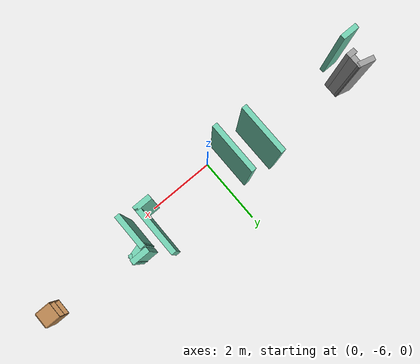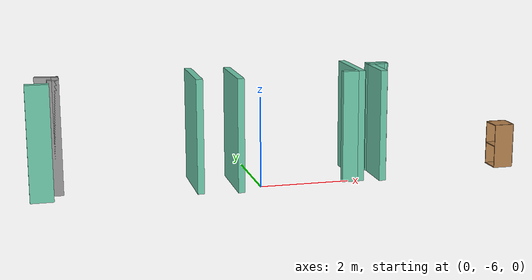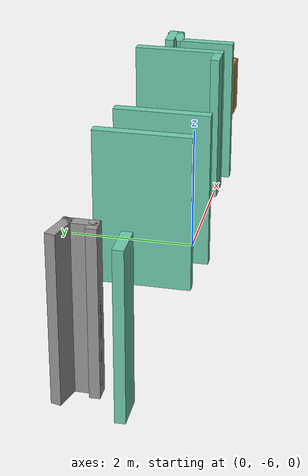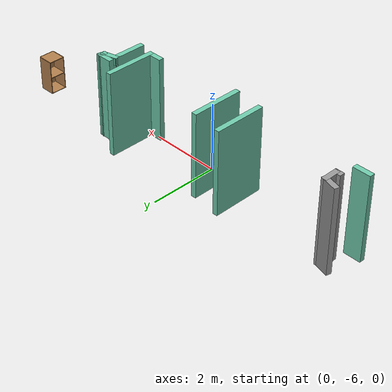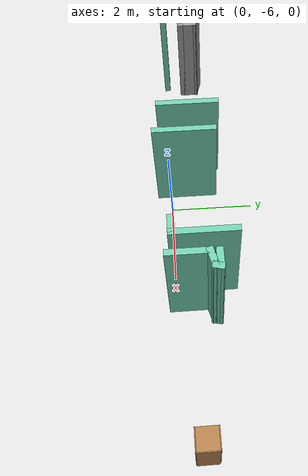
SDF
<sdf version="1.6">
 <world name="default">
  <model name="map_3">
   <pose>0.639107 -0.355311 0 0 -0 0</pose>
   <link name="Wall_145">
    <collision name="Wall_145_Collision">
     <geometry><box><size>0.5 0.15 2.5</size></box></geometry>
     <pose>0 0 1.25 0 -0 0</pose>
    </collision>
    <visual name="Wall_145_Visual">
     <pose>0 0 1.25 0 -0 0</pose>
     <geometry><box><size>0.5 0.15 2.5</size></box></geometry>
     <material>
      <script><uri>file://media/materials/scripts/gazebo.material</uri><name>Gazebo/Grey</name></script>
      <ambient>1 1 1 1</ambient>
     </material>
     <meta><layer>0</layer></meta>
    </visual>
    <pose>-5.10726 -4.78299 0 0 -0 -0.261799</pose>
   </link>
   <link name="Wall_146">
    <collision name="Wall_146_Collision">
     <geometry><box><size>0.5 0.15 2.5</size></box></geometry>
     <pose>0 0 1.25 0 -0 0</pose>
    </collision>
    <visual name="Wall_146_Visual">
     <pose>0 0 1.25 0 -0 0</pose>
     <geometry><box><size>0.5 0.15 2.5</size></box></geometry>
     <material>
      <script><uri>file://media/materials/scripts/gazebo.material</uri><name>Gazebo/Grey</name></script>
      <ambient>1 1 1 1</ambient>
     </material>
     <meta><layer>0</layer></meta>
    </visual>
    <pose>-4.93822 -5.00328 0 0 -0 -1.5708</pose>
   </link>
   <link name="Wall_147">
    <collision name="Wall_147_Collision">
     <geometry><box><size>0.25 0.15 2.5</size></box></geometry>
     <pose>0 0 1.25 0 -0 0</pose>
    </collision>
    <visual name="Wall_147_Visual">
     <pose>0 0 1.25 0 -0 0</pose>
     <geometry><box><size>0.25 0.15 2.5</size></box></geometry>
     <material>
      <script><uri>file://media/materials/scripts/gazebo.material</uri><name>Gazebo/Grey</name></script>
      <ambient>1 1 1 1</ambient>
     </material>
     <meta><layer>0</layer></meta>
    </visual>
    <pose>-4.98822 -5.17828 0 0 -0 3.14159</pose>
   </link>
   <link name="Wall_63">
    <collision name="Wall_63_Collision">
     <geometry><box><size>0.5 0.15 2.5</size></box></geometry>
     <pose>0 0 1.25 0 -0 0</pose>
    </collision>
    <visual name="Wall_63_Visual">
     <pose>0 0 1.25 0 -0 0</pose>
     <geometry><box><size>0.5 0.15 2.5</size></box></geometry>
     <material>
      <script><uri>file://media/materials/scripts/gazebo.material</uri><name>Gazebo/Grey</name></script>
      <ambient>0.435294 0.796078 0.67451 1</ambient>
     </material>
     <meta><layer>0</layer></meta>
    </visual>
    <pose>-5.33479 -5.63401 0 0 -0 0</pose>
   </link>
   <link name="Wall_66">
    <collision name="Wall_66_Collision">
     <geometry><box><size>1.5 0.15 2.5</size></box></geometry>
     <pose>0 0 1.25 0 -0 0</pose>
    </collision>
    <visual name="Wall_66_Visual">
     <pose>0 0 1.25 0 -0 0</pose>
     <geometry><box><size>1.5 0.15 2.5</size></box></geometry>
     <material>
      <script><uri>file://media/materials/scripts/gazebo.material</uri><name>Gazebo/Grey</name></script>
      <ambient>0.435294 0.796078 0.67451 1</ambient>
     </material>
     <meta><layer>0</layer></meta>
    </visual>
    <pose>-2.00669 -5.13401 0 0 -0 1.5708</pose>
   </link>
   <link name="Wall_74">
    <collision name="Wall_74_Collision">
     <geometry><box><size>1.5 0.15 2.5</size></box></geometry>
     <pose>0 0 1.25 0 -0 0</pose>
    </collision>
    <visual name="Wall_74_Visual">
     <pose>0 0 1.25 0 -0 0</pose>
     <geometry><box><size>1.5 0.15 2.5</size></box></geometry>
     <material>
      <script><uri>file://media/materials/scripts/gazebo.material</uri><name>Gazebo/Grey</name></script>
      <ambient>0.435294 0.796078 0.67451 1</ambient>
     </material>
     <meta><layer>0</layer></meta>
    </visual>
    <pose>-1.14105 -5.24593 0 0 -0 -1.5708</pose>
   </link>
   <link name="Wall_80">
    <collision name="Wall_80_Collision">
     <geometry><box><size>0.5 0.15 2.5</size></box></geometry>
     <pose>0 0 1.25 0 -0 0</pose>
    </collision>
    <visual name="Wall_80_Visual">
     <pose>0 0 1.25 0 -0 0</pose>
     <geometry><box><size>0.5 0.15 2.5</size></box></geometry>
     <material>
      <script><uri>file://media/materials/scripts/gazebo.material</uri><name>Gazebo/Grey</name></script>
      <ambient>0.435294 0.796078 0.67451 1</ambient>
     </material>
     <meta><layer>0</layer></meta>
    </visual>
    <pose>1.46773 -5.6377 0 0 -0 0</pose>
   </link>
   <link name="Wall_81">
    <collision name="Wall_81_Collision">
     <geometry><box><size>1.5 0.15 2.5</size></box></geometry>
     <pose>0 0 1.25 0 -0 0</pose>
    </collision>
    <visual name="Wall_81_Visual">
     <pose>0 0 1.25 0 -0 0</pose>
     <geometry><box><size>1.5 0.15 2.5</size></box></geometry>
     <material>
      <script><uri>file://media/materials/scripts/gazebo.material</uri><name>Gazebo/Grey</name></script>
      <ambient>0.435294 0.796078 0.67451 1</ambient>
     </material>
     <meta><layer>0</layer></meta>
    </visual>
    <pose>1.64273 -4.9627 0 0 -0 1.5708</pose>
   </link>
   <link name="Wall_92">
    <collision name="Wall_92_Collision">
     <geometry><box><size>0.5 0.15 2.5</size></box></geometry>
     <pose>0 0 1.25 0 -0 0</pose>
    </collision>
    <visual name="Wall_92_Visual">
     <pose>0 0 1.25 0 -0 0</pose>
     <geometry><box><size>0.5 0.15 2.5</size></box></geometry>
     <material>
      <script><uri>file://media/materials/scripts/gazebo.material</uri><name>Gazebo/Grey</name></script>
      <ambient>0.435294 0.796078 0.67451 1</ambient>
     </material>
     <meta><layer>0</layer></meta>
    </visual>
    <pose>2.31522 -4.69021 0 0 -0 0</pose>
   </link>
   <link name="Wall_93">
    <collision name="Wall_93_Collision">
     <geometry><box><size>0.25 0.15 2.5</size></box></geometry>
     <pose>0 0 1.25 0 -0 0</pose>
    </collision>
    <visual name="Wall_93_Visual">
     <pose>0 0 1.25 0 -0 0</pose>
     <geometry><box><size>0.25 0.15 2.5</size></box></geometry>
     <material>
      <script><uri>file://media/materials/scripts/gazebo.material</uri><name>Gazebo/Grey</name></script>
      <ambient>0.435294 0.796078 0.67451 1</ambient>
     </material>
     <meta><layer>0</layer></meta>
    </visual>
    <pose>2.47728 -4.73851 0 0 -0 -1.8326</pose>
   </link>
   <link name="Wall_94">
    <collision name="Wall_94_Collision">
     <geometry><box><size>0.5 0.15 2.5</size></box></geometry>
     <pose>0 0 1.25 0 -0 0</pose>
    </collision>
    <visual name="Wall_94_Visual">
     <pose>0 0 1.25 0 -0 0</pose>
     <geometry><box><size>0.5 0.15 2.5</size></box></geometry>
     <material>
      <script><uri>file://media/materials/scripts/gazebo.material</uri><name>Gazebo/Grey</name></script>
      <ambient>0.435294 0.796078 0.67451 1</ambient>
     </material>
     <meta><layer>0</layer></meta>
    </visual>
    <pose>2.2953 -4.8321 0 0 -0 -2.87979</pose>
   </link>
   <link name="Wall_95">
    <collision name="Wall_95_Collision">
     <geometry><box><size>1 0.15 2.5</size></box></geometry>
     <pose>0 0 1.25 0 -0 0</pose>
    </collision>
    <visual name="Wall_95_Visual">
     <pose>0 0 1.25 0 -0 0</pose>
     <geometry><box><size>1 0.15 2.5</size></box></geometry>
     <material>
      <script><uri>file://media/materials/scripts/gazebo.material</uri><name>Gazebo/Grey</name></script>
      <ambient>0.435294 0.796078 0.67451 1</ambient>
     </material>
     <meta><layer>0</layer></meta>
    </visual>
    <pose>2.12626 -5.30239 0 0 -0 -1.5708</pose>
   </link>
   <static>1</static>
  </model>
  <model name="cabinet_5">
   <static>1</static>
   <link name="cabinet_bottom_plate">
    <inertial>
     <pose>0 0 -1 0 -0 0</pose>
     <inertia><ixx>2.05</ixx><ixy>0</ixy><ixz>0</ixz><iyy>2.05</iyy><iyz>0</iyz><izz>2.05</izz></inertia>
     <mass>25</mass>
    </inertial>
    <collision name="cabinet_bottom_plate_geom">
     <pose>0 0 0.01 0 -0 0</pose>
     <geometry><box><size>0.45 0.45 0.02</size></box></geometry>
    </collision>
    <visual name="cabinet_bottom_plate_geom_visual">
     <pose>0 0 0.01 0 -0 0</pose>
     <geometry><box><size>0.45 0.45 0.02</size></box></geometry>
     <material>
      <script><uri>file://media/materials/scripts/gazebo.material</uri><name>Gazebo/Wood</name></script>
     </material>
    </visual>
    <collision name="cabinet_bottom_plate_geom_cabinet_back_plate">
     <pose>0.235 0 0.51 0 -0 0</pose>
     <geometry><box><size>0.02 0.45 1.02</size></box></geometry>
    </collision>
    <visual name="cabinet_bottom_plate_geom_cabinet_back_plate_visual">
     <pose>0.235 0 0.51 0 -0 0</pose>
     <geometry><box><size>0.02 0.45 1.02</size></box></geometry>
     <material>
      <script><uri>file://media/materials/scripts/gazebo.material</uri><name>Gazebo/Wood</name></script>
     </material>
    </visual>
    <collision name="cabinet_bottom_plate_geom_cabinet_left_plate">
     <pose>0 0.235 0.51 0 -0 0</pose>
     <geometry><box><size>0.45 0.02 1.02</size></box></geometry>
    </collision>
    <visual name="cabinet_bottom_plate_geom_cabinet_left_plate_visual">
     <pose>0 0.235 0.51 0 -0 0</pose>
     <geometry><box><size>0.45 0.02 1.02</size></box></geometry>
     <material>
      <script><uri>file://media/materials/scripts/gazebo.material</uri><name>Gazebo/Wood</name></script>
     </material>
    </visual>
    <collision name="cabinet_bottom_plate_geom_cabinet_middle_plate">
     <pose>0 0 0.51 0 -0 0</pose>
     <geometry><box><size>0.45 0.45 0.02</size></box></geometry>
    </collision>
    <visual name="cabinet_bottom_plate_geom_cabinet_middle_plate_visual">
     <pose>0 0 0.51 0 -0 0</pose>
     <geometry><box><size>0.45 0.45 0.02</size></box></geometry>
     <material>
      <script><uri>file://media/materials/scripts/gazebo.material</uri><name>Gazebo/Wood</name></script>
     </material>
    </visual>
    <collision name="cabinet_bottom_plate_geom_cabinet_right_plate">
     <pose>0 -0.235 0.51 0 -0 0</pose>
     <geometry><box><size>0.45 0.02 1.02</size></box></geometry>
    </collision>
    <visual name="cabinet_bottom_plate_geom_cabinet_right_plate_visual">
     <pose>0 -0.235 0.51 0 -0 0</pose>
     <geometry><box><size>0.45 0.02 1.02</size></box></geometry>
     <material>
      <script><uri>file://media/materials/scripts/gazebo.material</uri><name>Gazebo/Wood</name></script>
     </material>
    </visual>
    <collision name="cabinet_bottom_plate_geom_cabinet_top_plate">
     <pose>0 0 1.01 0 -0 0</pose>
     <geometry><box><size>0.45 0.45 0.02</size></box></geometry>
    </collision>
    <visual name="cabinet_bottom_plate_geom_cabinet_top_plate_visual">
     <pose>0 0 1.01 0 -0 0</pose>
     <geometry><box><size>0.45 0.45 0.02</size></box></geometry>
     <material>
      <script><uri>file://media/materials/scripts/gazebo.material</uri><name>Gazebo/Wood</name></script>
     </material>
    </visual>
   </link>
   <pose>5.9049 -5.51156 0 0 -0 0</pose>
  </model>
 </world>
</sdf>
